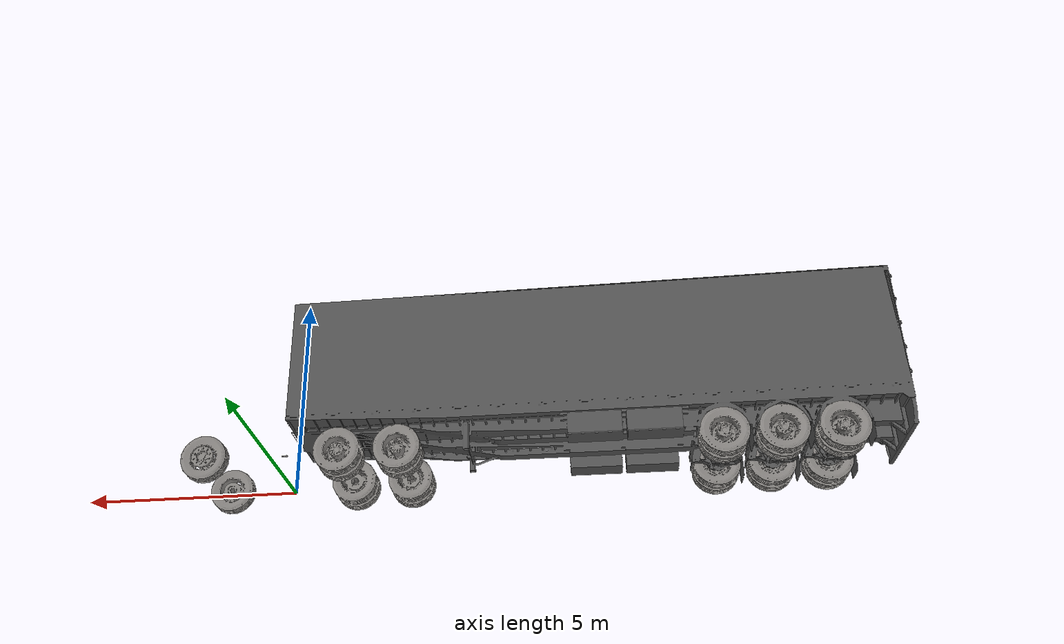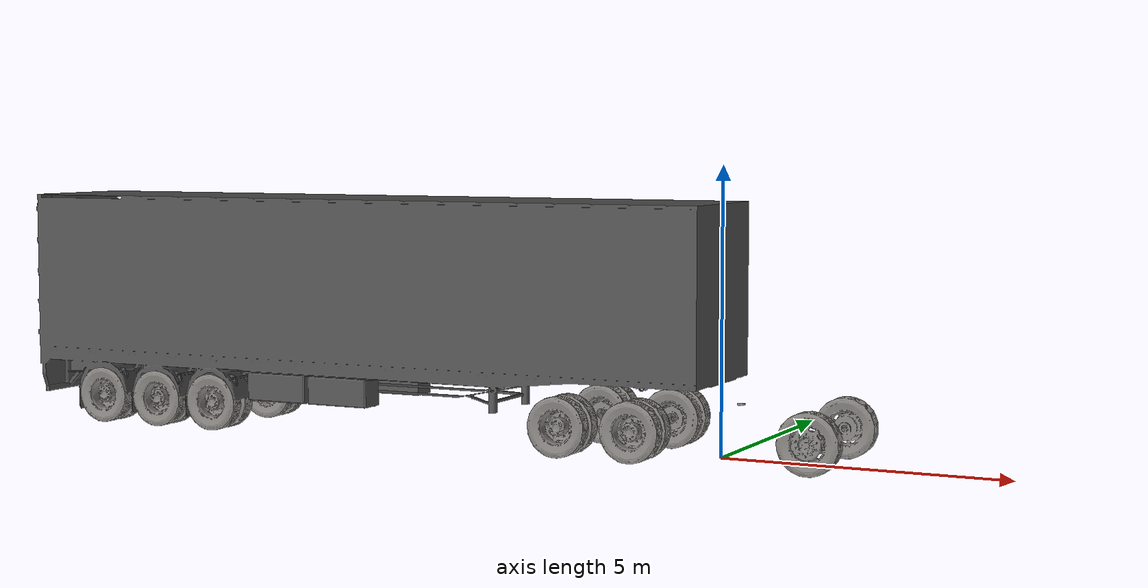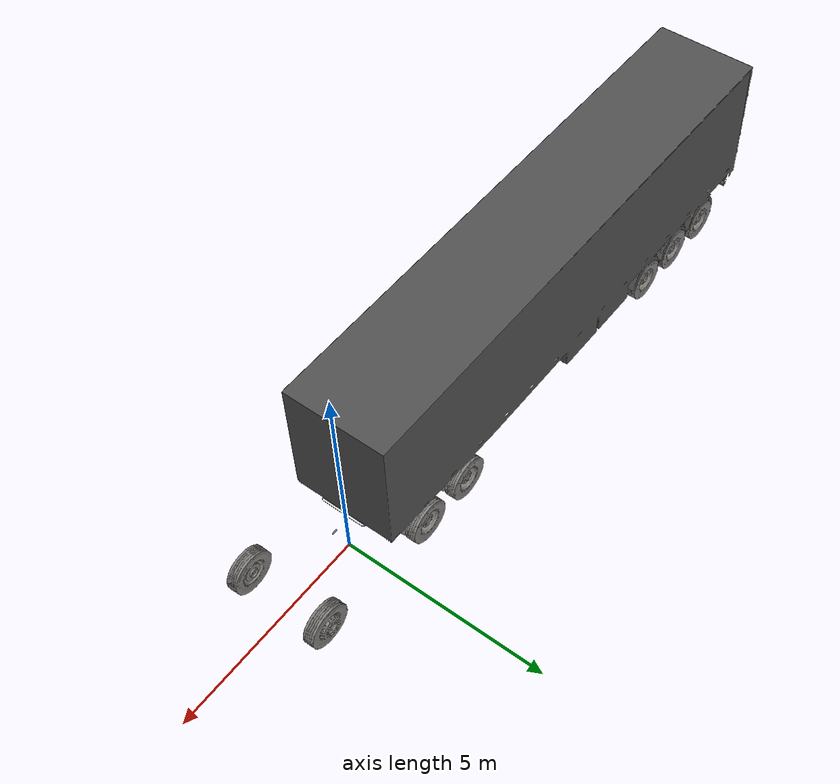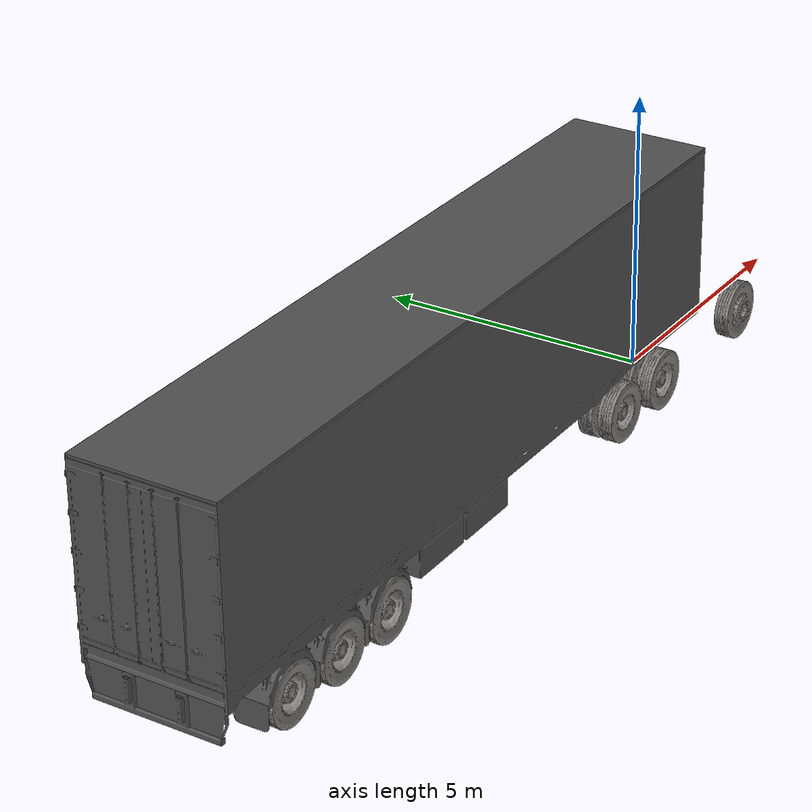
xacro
<?xml version="1.0"?>
<robot xmlns:xacro="http://www.ros.org/wiki/xacro" name="semitruck">
    <!-- Arguments -->
    <xacro:arg name="has_trailer" default="true" />

    <!-- Create the combined robot -->
    <xacro:macro name="create_semitruck" params="has_trailer">
        <!-- Include the truck URDF -->
        <xacro:include filename="truck.urdf" />

        <!-- Conditionally include the trailer URDF -->
        <xacro:if value="${has_trailer}">
            <xacro:include filename="semitrailer.urdf" />

            <!-- Connect trailer to truck -->
            <joint name="truck_trailer_link_joint" type="continuous">
                <parent link="truck_fifth_wheel_link" />
                <child link="semitrailer_kingpin_link" />
                <origin xyz="0 0 0" rpy="0 0 0" />
                <axis xyz="0 0 1" />
            </joint>
        </xacro:if>
    </xacro:macro>

    <!-- Create the actual robot instance -->
    <xacro:create_semitruck has_trailer="$(arg has_trailer)" />
</robot>

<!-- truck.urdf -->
<robot name="truck" version="1.0">
  <joint name="truck_chassis_joint" type="fixed">
    <origin rpy="0.00000 0.00000 0.00000" xyz="0.31460 0.00000 0.93498" />
    <parent link="truck" />
    <child link="truck_chassis_link" />
  </joint>
  <joint name="truck_fifth_wheel_link_joint" type="revolute">
    <limit lower="-3.14000" upper="3.14000" effort="0.00000" velocity="0.00000" />
    <origin rpy="0.00000 0.00000 0.00000" xyz="-1.42640 0.00000 1.21575" />
    <parent link="truck" />
    <child link="truck_fifth_wheel_link" />
    <axis xyz="0.00000 1.00000 0.00000" />
  </joint>
  <joint name="truck_fls_link_joint" type="revolute">
    <limit lower="-3.14000" upper="3.14000" effort="0.00000" velocity="0.00000" />
    <origin rpy="0.00000 0.00000 0.00000" xyz="1.89388 1.02500 0.51968" />
    <parent link="truck" />
    <child link="truck_fls_link" />
    <axis xyz="0.00000 0.00000 1.00000" />
  </joint>
  <joint name="truck_flw_link_joint" type="continuous">
    <limit lower="0" upper="0" effort="0.00000" velocity="0.00000" />
    <origin rpy="0.00000 0.00000 0.00000" xyz="0.00000 0.00000 0.00000" />
    <parent link="truck_fls_link" />
    <child link="truck_flw_link" />
    <axis xyz="0.00000 1.00000 0.00000" />
  </joint>
  <joint name="truck_frs_link_joint" type="revolute">
    <limit lower="0.00000" upper="0.00000" effort="0.00000" velocity="0.00000" />
    <origin rpy="0.00000 0.00000 0.00000" xyz="1.89395 -1.02500 0.51968" />
    <parent link="truck" />
    <child link="truck_frs_link" />
    <axis xyz="0.00000 0.00000 1.00000" />
  </joint>
  <joint name="truck_frw_link_joint" type="continuous">
    <limit lower="0" upper="0" effort="0.00000" velocity="0.00000" />
    <origin rpy="0.00000 0.00000 0.00000" xyz="0.00000 0.00000 0.00000" />
    <parent link="truck_frs_link" />
    <child link="truck_frw_link" />
    <axis xyz="0.00000 1.00000 0.00000" />
  </joint>
  <joint name="truck_mlw_link_joint" type="continuous">
    <limit lower="0" upper="0" effort="0.00000" velocity="0.00000" />
    <origin rpy="0.00000 0.00000 0.00000" xyz="-1.20090 0.93800 0.51968" />
    <parent link="truck" />
    <child link="truck_mlw_link" />
    <axis xyz="0.00000 1.00000 0.00000" />
  </joint>
  <joint name="truck_mrw_link_joint" type="continuous">
    <limit lower="0" upper="0" effort="0.00000" velocity="0.00000" />
    <origin rpy="0.00000 0.00000 0.00000" xyz="-1.20090 -0.93800 0.51968" />
    <parent link="truck" />
    <child link="truck_mrw_link" />
    <axis xyz="0.00000 1.00000 0.00000" />
  </joint>
  <joint name="truck_rear_axle_link_joint" type="fixed">
    <origin rpy="0.00000 0.00000 0.00000" xyz="-1.87857 -0.00000 0.51968" />
    <parent link="truck" />
    <child link="truck_rear_axle_link" />
  </joint>
  <joint name="truck_rear_end_link_joint" type="fixed">
    <origin rpy="0.00000 0.00000 0.00000" xyz="-3.60090 0.00000 0.93498" />
    <parent link="truck" />
    <child link="truck_rear_end_link" />
  </joint>
  <joint name="truck_rlw_link_joint" type="continuous">
    <limit lower="0" upper="0" effort="0.00000" velocity="0.00000" />
    <origin rpy="0.00000 0.00000 0.00000" xyz="-2.55624 0.93800 0.51968" />
    <parent link="truck" />
    <child link="truck_rlw_link" />
    <axis xyz="0.00000 1.00000 0.00000" />
  </joint>
  <joint name="truck_rrw_link_joint" type="continuous">
    <limit lower="0" upper="0" effort="0.00000" velocity="0.00000" />
    <origin rpy="0.00000 0.00000 0.00000" xyz="-2.55624 -0.93800 0.51968" />
    <parent link="truck" />
    <child link="truck_rrw_link" />
    <axis xyz="0.00000 1.00000 0.00000" />
  </joint>
  <link name="truck" />
  <link name="truck_chassis_link">
    <visual name="body">
      <origin rpy="0.00000 0.00000 0.00000" xyz="0.00000 0.00000 0.00000" />
      <material name="mat_13" />
      <geometry>
        <mesh filename="package://waywiser_description/meshes/truck/body.dae"
          scale="0.01000 0.01000 0.01000" />
      </geometry>
    </visual>
  </link>
  <link name="truck_fifth_wheel_link">
    <visual name="fifth_wheel">
      <origin rpy="0.00000 -0.00000 0.00000" xyz="-0.00000 -0.00000 -0.00000" />
      <material name="mat_0" />
      <geometry>
        <mesh filename="package://waywiser_description/meshes/truck/fifth_wheel.dae"
          scale="0.01000 0.01000 0.01000" />
      </geometry>
    </visual>
  </link>
  <link name="truck_fls_link" />
  <link name="truck_flw_link">
    <visual name="flw">
      <origin rpy="0.00000 0.00000 0.00000" xyz="-0.00000 0.00000 -0.00000" />
      <material name="mat_13" />
      <geometry>
        <mesh filename="package://waywiser_description/meshes/truck/front_left_wheel.dae"
          scale="0.01000 0.01000 0.01000" />
      </geometry>
    </visual>
  </link>
  <link name="truck_frs_link" />
  <link name="truck_frw_link">
    <visual name="frw">
      <origin rpy="0.00000 0.00000 -3.14159" xyz="0.00000 0.00000 -0.00000" />
      <material name="mat_13" />
      <geometry>
        <mesh filename="package://waywiser_description/meshes/truck/front_left_wheel.dae"
          scale="0.01000 0.01000 0.01000" />
      </geometry>
    </visual>
  </link>
  <link name="truck_mlw_link">
    <visual name="mlw">
      <origin rpy="0.00000 0.00000 0.00000" xyz="0.00000 0.00000 -0.00000" />
      <material name="mat_13" />
      <geometry>
        <mesh filename="package://waywiser_description/meshes/truck/rear_left_wheel.dae"
          scale="0.01000 0.01000 0.01000" />
      </geometry>
    </visual>
  </link>
  <link name="truck_mrw_link">
    <visual name="mrw">
      <origin rpy="0.00000 0.00000 -3.14159" xyz="0.00000 0.00000 -0.00000" />
      <material name="mat_13" />
      <geometry>
        <mesh filename="package://waywiser_description/meshes/truck/rear_left_wheel.dae"
          scale="0.01000 0.01000 0.01000" />
      </geometry>
    </visual>
  </link>
  <link name="truck_rear_axle_link" />
  <link name="truck_rear_end_link" />
  <link name="truck_rlw_link">
    <visual name="rlw">
      <origin rpy="0.00000 0.00000 0.00000" xyz="0.00000 -0.00000 0.00000" />
      <material name="mat_13" />
      <geometry>
        <mesh filename="package://waywiser_description/meshes/truck/rear_left_wheel.dae"
          scale="0.01000 0.01000 0.01000" />
      </geometry>
    </visual>
  </link>
  <link name="truck_rrw_link">
    <visual name="rrw">
      <origin rpy="0.00000 0.00000 -3.14159" xyz="0.00000 0.00000 -0.00000" />
      <material name="mat_13" />
      <geometry>
        <mesh filename="package://waywiser_description/meshes/truck/rear_left_wheel.dae"
          scale="0.01000 0.01000 0.01000" />
      </geometry>
    </visual>
  </link>
  <material name="mat_0">
    <color rgba="0.05098 0.05098 0.05098 1.00000" />
  </material>
  <material name="mat_13">
    <color rgba="0.51373 0.50196 0.49020 1.00000" />
  </material>
</robot>

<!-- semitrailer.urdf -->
<robot name="semitrailer" version="1.0">
  <joint name="semitrailer_base_link_joint" type="fixed">
    <origin rpy="0.00000 0.00000 0.00000" xyz="-5.40879 0.00000 -1.21261" />
    <parent link="semitrailer_kingpin_link" />
    <child link="semitrailer_base_link" />
  </joint>
  <joint name="semitrailer_chassis_link_joint" type="fixed">
    <origin rpy="0.00000 0.00000 0.00000" xyz="0.00000 0.00000 1.21261" />
    <parent link="semitrailer_base_link" />
    <child link="semitrailer_chassis_link" />
  </joint>
  <joint name="semitrailer_flw_link_joint" type="continuous">
    <limit lower="0" upper="0" effort="0.00000" velocity="0.00000" />
    <origin rpy="0.00000 0.00000 0.00000" xyz="1.24653 0.93800 -0.00000" />
    <parent link="semitrailer_rear_axle_link" />
    <child link="semitrailer_flw_link" />
    <axis xyz="0.00000 1.00000 0.00000" />
  </joint>
  <joint name="semitrailer_front_end_link_joint" type="fixed">
    <origin rpy="0.00000 0.00000 0.00000" xyz="6.85188 0.00000 -0.01988" />
    <parent link="semitrailer_chassis_link" />
    <child link="semitrailer_front_end_link" />
  </joint>
  <joint name="semitrailer_frw_link_joint" type="continuous">
    <limit lower="0" upper="0" effort="0.00000" velocity="0.00000" />
    <origin rpy="0.00000 0.00000 0.00000" xyz="1.24654 -0.93800 -0.00000" />
    <parent link="semitrailer_rear_axle_link" />
    <child link="semitrailer_frw_link" />
    <axis xyz="0.00000 1.00000 0.00000" />
  </joint>
  <joint name="semitrailer_left_ultrasonic_link_joint" type="fixed">
    <origin rpy="0.00000 0.00000 0.00000" xyz="-4.13064 1.30938 0.52382" />
    <parent link="semitrailer_chassis_link" />
    <child link="semitrailer_left_ultrasonic_link" />
  </joint>
  <joint name="semitrailer_mlw_link_joint" type="continuous">
    <limit lower="0" upper="0" effort="0.00000" velocity="0.00000" />
    <origin rpy="0.00000 0.00000 0.00000" xyz="0.00337 0.93800 -0.00000" />
    <parent link="semitrailer_rear_axle_link" />
    <child link="semitrailer_mlw_link" />
    <axis xyz="0.00000 1.00000 0.00000" />
  </joint>
  <joint name="semitrailer_mrw_link_joint" type="continuous">
    <limit lower="0" upper="0" effort="0.00000" velocity="0.00000" />
    <origin rpy="0.00000 0.00000 0.00000" xyz="0.00337 -0.93800 -0.00000" />
    <parent link="semitrailer_rear_axle_link" />
    <child link="semitrailer_mrw_link" />
    <axis xyz="0.00000 1.00000 0.00000" />
  </joint>
  <joint name="semitrailer_rear_axle_link_joint" type="fixed">
    <origin rpy="0.00000 0.00000 0.00000" xyz="-4.08804 0.00000 -0.69292" />
    <parent link="semitrailer_chassis_link" />
    <child link="semitrailer_rear_axle_link" />
  </joint>
  <joint name="semitrailer_rear_end_link_joint" type="fixed">
    <origin rpy="0.00000 0.00000 0.00000" xyz="-6.86816 0.00000 -0.30824" />
    <parent link="semitrailer_chassis_link" />
    <child link="semitrailer_rear_end_link" />
  </joint>
  <joint name="semitrailer_rear_left_end_link_joint" type="fixed">
    <origin rpy="0.00000 0.00000 -3.14159" xyz="-6.86816 1.24648 -0.30824" />
    <parent link="semitrailer_chassis_link" />
    <child link="semitrailer_rear_left_end_link" />
  </joint>
  <joint name="semitrailer_rear_right_end_link_joint" type="fixed">
    <origin rpy="0.00000 0.00000 -3.14159" xyz="-6.86816 -1.24844 -0.30824" />
    <parent link="semitrailer_chassis_link" />
    <child link="semitrailer_rear_right_end_link" />
  </joint>
  <joint name="semitrailer_rear_ultrasonic_link_joint" type="fixed">
    <origin rpy="0.00000 0.00000 0.00000" xyz="-6.94237 -0.48491 0.49563" />
    <parent link="semitrailer_chassis_link" />
    <child link="semitrailer_rear_ultrasonic_link" />
  </joint>
  <joint name="semitrailer_rlw_link_joint" type="continuous">
    <limit lower="0" upper="0" effort="0.00000" velocity="0.00000" />
    <origin rpy="0.00000 0.00000 0.00000" xyz="-1.24991 0.93800 -0.00000" />
    <parent link="semitrailer_rear_axle_link" />
    <child link="semitrailer_rlw_link" />
    <axis xyz="0.00000 1.00000 0.00000" />
  </joint>
  <joint name="semitrailer_rrw_link_joint" type="continuous">
    <limit lower="0" upper="0" effort="0.00000" velocity="0.00000" />
    <origin rpy="0.00000 0.00000 0.00000" xyz="-1.24990 -0.93800 -0.00000" />
    <parent link="semitrailer_rear_axle_link" />
    <child link="semitrailer_rrw_link" />
    <axis xyz="0.00000 1.00000 0.00000" />
  </joint>
  <link name="semitrailer_base_link" />
  <link name="semitrailer_chassis_link">
    <visual name="body">
      <origin rpy="0.00000 0.00000 0.00000" xyz="-4.20420 0.00000 -0.30824" />
      <material name="mat_0.036" />
      <geometry>
        <mesh filename="package://waywiser_description/meshes/semitrailer/body.dae"
          scale="1.00000 1.00000 1.00000" />
      </geometry>
    </visual>
  </link>
  <link name="semitrailer_flw_link">
    <visual name="flw">
      <origin rpy="0.00000 0.00000 -0.00000" xyz="0.00000 0.00000 0.00000" />
      <material name="mat_13.031" />
      <geometry>
        <mesh filename="package://waywiser_description/meshes/semitrailer/front_left_wheel.dae"
          scale="1.00000 1.00000 1.00000" />
      </geometry>
    </visual>
  </link>
  <link name="semitrailer_front_end_link" />
  <link name="semitrailer_frw_link">
    <visual name="frw">
      <origin rpy="-0.00000 0.00000 -3.14159" xyz="0.00000 0.00000 0.00000" />
      <material name="mat_13.031" />
      <geometry>
        <mesh filename="package://waywiser_description/meshes/semitrailer/front_left_wheel.dae"
          scale="1.00000 1.00000 1.00000" />
      </geometry>
    </visual>
  </link>
  <link name="semitrailer_kingpin_link" />
  <link name="semitrailer_left_ultrasonic_link" />
  <link name="semitrailer_mlw_link">
    <visual name="mlw">
      <origin rpy="0.00000 0.00000 -0.00000" xyz="0.00000 0.00000 0.00000" />
      <material name="mat_13.031" />
      <geometry>
        <mesh filename="package://waywiser_description/meshes/semitrailer/front_left_wheel.dae"
          scale="1.00000 1.00000 1.00000" />
      </geometry>
    </visual>
  </link>
  <link name="semitrailer_mrw_link">
    <visual name="mrw">
      <origin rpy="-0.00000 0.00000 -3.14159" xyz="0.00000 0.00000 0.00000" />
      <material name="mat_13.031" />
      <geometry>
        <mesh filename="package://waywiser_description/meshes/semitrailer/front_left_wheel.dae"
          scale="1.00000 1.00000 1.00000" />
      </geometry>
    </visual>
  </link>
  <link name="semitrailer_rear_axle_link" />
  <link name="semitrailer_rear_end_link" />
  <link name="semitrailer_rear_left_end_link" />
  <link name="semitrailer_rear_right_end_link" />
  <link name="semitrailer_rear_ultrasonic_link" />
  <link name="semitrailer_rlw_link">
    <visual name="rlw">
      <origin rpy="0.00000 0.00000 -0.00000" xyz="0.00000 0.00000 0.00000" />
      <material name="mat_13.031" />
      <geometry>
        <mesh filename="package://waywiser_description/meshes/semitrailer/front_left_wheel.dae"
          scale="1.00000 1.00000 1.00000" />
      </geometry>
    </visual>
  </link>
  <link name="semitrailer_rrw_link">
    <visual name="rrw">
      <origin rpy="-0.00000 0.00000 -3.14159" xyz="0.00000 0.00000 0.00000" />
      <material name="mat_13.031" />
      <geometry>
        <mesh filename="package://waywiser_description/meshes/semitrailer/front_left_wheel.dae"
          scale="1.00000 1.00000 1.00000" />
      </geometry>
    </visual>
  </link>
  <material name="mat_0.036">
    <color rgba="0.31765 0.31765 0.31765 1.00000" />
  </material>
  <material name="mat_13.031">
    <color rgba="0.51373 0.50196 0.49020 1.00000" />
  </material>
</robot>
